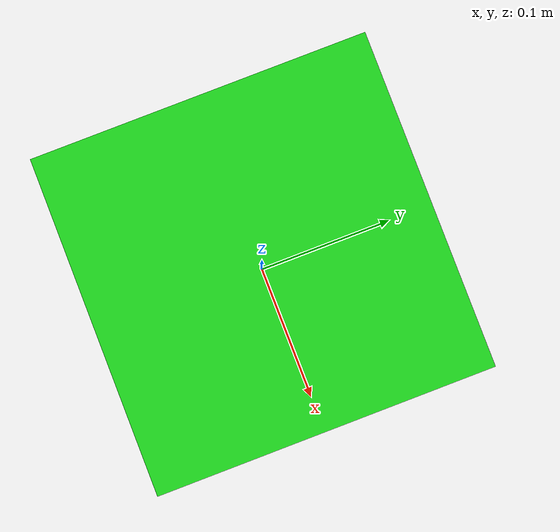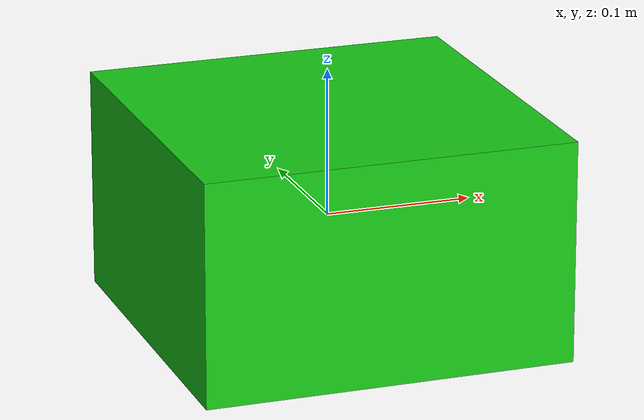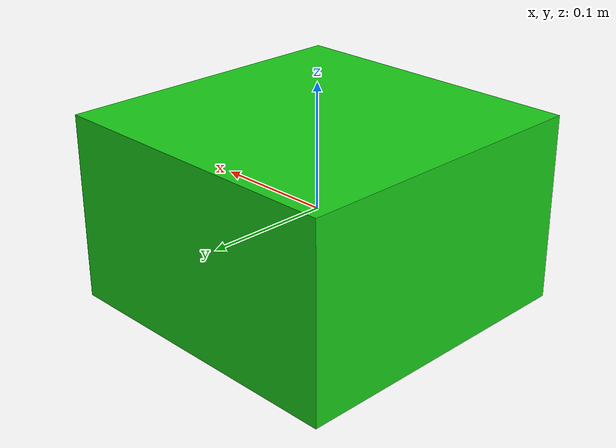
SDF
<?xml version="1.0"?>
<!-- Phantom box for the US probe. Static, single link.
     Scaled down from the Kinova version: E6 reach is only 0.45 m. -->
<sdf version="1.9">
  <model name="green_box">
    <static>true</static>
    <link name="box_link">
      <visual name="visual">
        <geometry>
          <box><size>0.25 0.25 0.15</size></box>
        </geometry>
        <material>
          <ambient>0.0 0.6 0.0 1</ambient>
          <diffuse>0.1 0.8 0.1 1</diffuse>
          <specular>0.1 0.3 0.1 1</specular>
        </material>
      </visual>
      <collision name="collision">
        <geometry>
          <box><size>0.25 0.25 0.15</size></box>
        </geometry>
      </collision>
    </link>
  </model>
</sdf>
